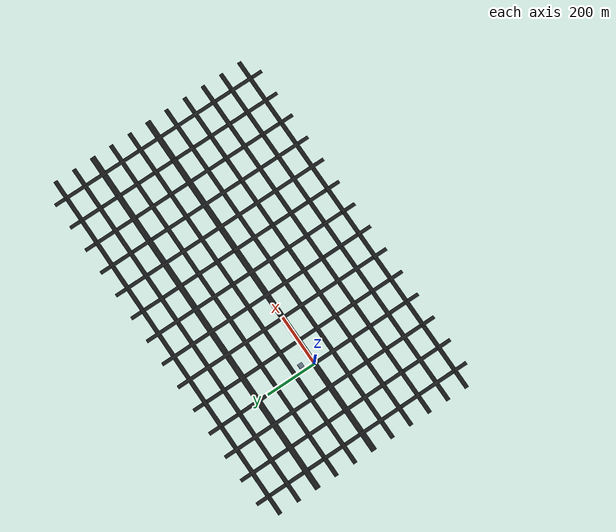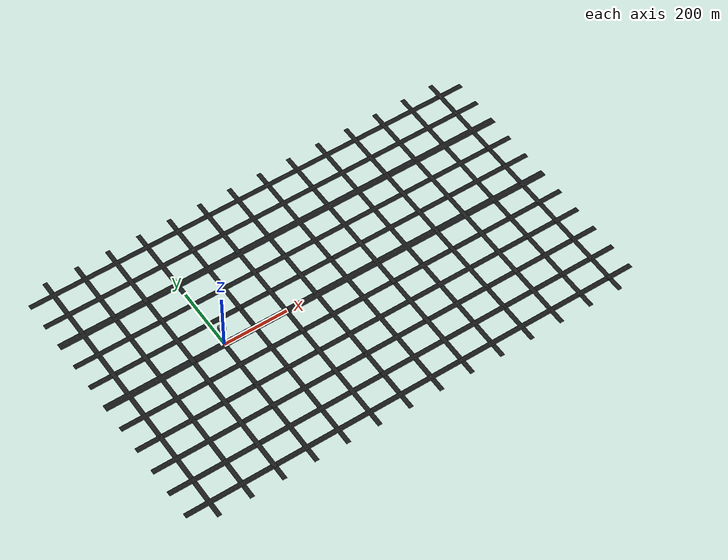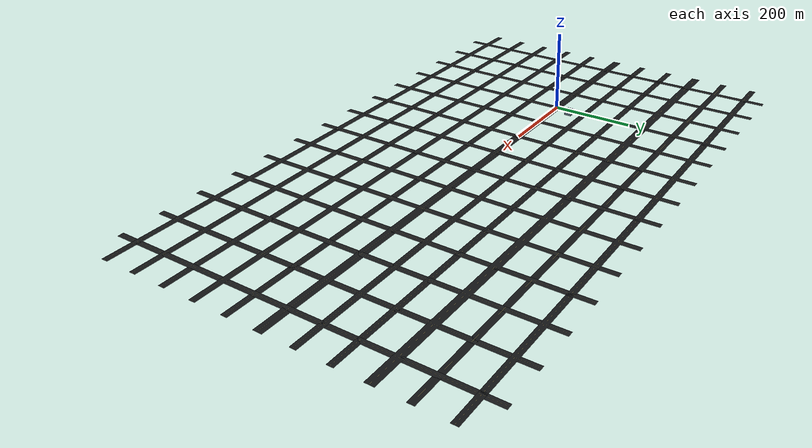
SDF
<sdf version="1.9">
 <world name="smart_city">
  <model name="building_1">
   <static>true</static>
   <pose>20 45 7 0 0 0</pose>
   <link name="building">
    <visual name="v">
     <geometry><box><size>18 18 14</size></box></geometry>
     <material><ambient>0.35 0.42 0.48 1</ambient></material>
    </visual>
   </link>
  </model>
  <model name="street_light_1">
   <static>true</static>
   <pose>20 8 4 0 0 0</pose>
   <link name="pole">
    <visual name="pole">
     <geometry><cylinder><radius>0.12</radius><length>8</length></cylinder></geometry>
     <material><ambient>0.15 0.15 0.15 1</ambient></material>
    </visual>
   </link>
  </model>
  <model name="street_tree_02">
   <static>true</static>
   <pose>15 44 0 0 0 0</pose>
   <link name="tree">
    <visual name="trunk">
     <pose>0 0 2 0 0 0</pose>
     <geometry><cylinder><radius>0.35</radius><length>4</length></cylinder></geometry>
     <material><ambient>0.30 0.18 0.08 1</ambient><diffuse>0.30 0.18 0.08 1</diffuse></material>
    </visual>
    <visual name="crown">
     <pose>0 0 5 0 0 0</pose>
     <geometry><sphere><radius>2.2</radius></sphere></geometry>
     <material><ambient>0.12 0.34 0.16 1</ambient><diffuse>0.12 0.34 0.16 1</diffuse></material>
    </visual>
   </link>
  </model>
  <model name="traffic_signal_1">
   <static>true</static>
   <pose>25 8 0 0 0 0</pose>
   <link name="signal">
    <visual name="mast">
     <pose>0 0 3 0 0 0</pose>
     <geometry><cylinder><radius>0.12</radius><length>6</length></cylinder></geometry>
     <material><ambient>0.12 0.12 0.12 1</ambient><diffuse>0.12 0.12 0.12 1</diffuse></material>
    </visual>
    <visual name="head">
     <pose>0 0 5.8 0 0 0</pose>
     <geometry><box><size>0.55 0.65 1.5</size></box></geometry>
     <material><ambient>0.16 0.17 0.16 1</ambient><diffuse>0.16 0.17 0.16 1</diffuse></material>
    </visual>
    <visual name="red_lamp">
     <pose>0 -0.34 6.2 0 0 0</pose>
     <geometry><sphere><radius>0.16</radius></sphere></geometry>
     <material>
      <ambient>0.9 0.04 0.02 1</ambient>
      <diffuse>0.9 0.04 0.02 1</diffuse>
      <emissive>0.6 0 0 1</emissive>
     </material>
    </visual>
    <visual name="green_lamp">
     <pose>0 -0.34 5.35 0 0 0</pose>
     <geometry><sphere><radius>0.16</radius></sphere></geometry>
     <material><ambient>0.02 0.7 0.12 1</ambient><diffuse>0.02 0.7 0.12 1</diffuse></material>
    </visual>
   </link>
  </model>
  <model name="metro_avenue_y_m400">
   <static>true</static>
   <link name="road">
    <visual name="asphalt">
     <pose>350 -400 0.025 0 0 0</pose>
     <geometry><box><size>1450 16 0.1</size></box></geometry>
     <material><ambient>0.075 0.08 0.085 1</ambient><diffuse>0.075 0.08 0.085 1</diffuse></material>
    </visual>
   </link>
  </model>
  <model name="metro_avenue_y_m320">
   <static>true</static>
   <link name="road">
    <visual name="asphalt">
     <pose>350 -320 0.025 0 0 0</pose>
     <geometry><box><size>1450 16 0.1</size></box></geometry>
     <material><ambient>0.075 0.08 0.085 1</ambient><diffuse>0.075 0.08 0.085 1</diffuse></material>
    </visual>
   </link>
  </model>
  <model name="metro_avenue_y_m240">
   <static>true</static>
   <link name="road">
    <visual name="asphalt">
     <pose>350 -240 0.025 0 0 0</pose>
     <geometry><box><size>1450 16 0.1</size></box></geometry>
     <material><ambient>0.075 0.08 0.085 1</ambient><diffuse>0.075 0.08 0.085 1</diffuse></material>
    </visual>
   </link>
  </model>
  <model name="metro_avenue_y_m160">
   <static>true</static>
   <link name="road">
    <visual name="asphalt">
     <pose>350 -160 0.025 0 0 0</pose>
     <geometry><box><size>1450 16 0.1</size></box></geometry>
     <material><ambient>0.075 0.08 0.085 1</ambient><diffuse>0.075 0.08 0.085 1</diffuse></material>
    </visual>
   </link>
  </model>
  <model name="metro_avenue_y_m80">
   <static>true</static>
   <link name="road">
    <visual name="asphalt">
     <pose>350 -80 0.025 0 0 0</pose>
     <geometry><box><size>1450 16 0.1</size></box></geometry>
     <material><ambient>0.075 0.08 0.085 1</ambient><diffuse>0.075 0.08 0.085 1</diffuse></material>
    </visual>
   </link>
  </model>
  <model name="metro_avenue_y_p0">
   <static>true</static>
   <link name="road">
    <visual name="asphalt">
     <pose>350 0 0.025 0 0 0</pose>
     <geometry><box><size>1450 22 0.1</size></box></geometry>
     <material><ambient>0.075 0.08 0.085 1</ambient><diffuse>0.075 0.08 0.085 1</diffuse></material>
    </visual>
   </link>
  </model>
  <model name="metro_avenue_y_p80">
   <static>true</static>
   <link name="road">
    <visual name="asphalt">
     <pose>350 80 0.025 0 0 0</pose>
     <geometry><box><size>1450 16 0.1</size></box></geometry>
     <material><ambient>0.075 0.08 0.085 1</ambient><diffuse>0.075 0.08 0.085 1</diffuse></material>
    </visual>
   </link>
  </model>
  <model name="metro_avenue_y_p160">
   <static>true</static>
   <link name="road">
    <visual name="asphalt">
     <pose>350 160 0.025 0 0 0</pose>
     <geometry><box><size>1450 16 0.1</size></box></geometry>
     <material><ambient>0.075 0.08 0.085 1</ambient><diffuse>0.075 0.08 0.085 1</diffuse></material>
    </visual>
   </link>
  </model>
  <model name="metro_avenue_y_p240">
   <static>true</static>
   <link name="road">
    <visual name="asphalt">
     <pose>350 240 0.025 0 0 0</pose>
     <geometry><box><size>1450 22 0.1</size></box></geometry>
     <material><ambient>0.075 0.08 0.085 1</ambient><diffuse>0.075 0.08 0.085 1</diffuse></material>
    </visual>
   </link>
  </model>
  <model name="metro_avenue_y_p320">
   <static>true</static>
   <link name="road">
    <visual name="asphalt">
     <pose>350 320 0.025 0 0 0</pose>
     <geometry><box><size>1450 16 0.1</size></box></geometry>
     <material><ambient>0.075 0.08 0.085 1</ambient><diffuse>0.075 0.08 0.085 1</diffuse></material>
    </visual>
   </link>
  </model>
  <model name="metro_avenue_y_p400">
   <static>true</static>
   <link name="road">
    <visual name="asphalt">
     <pose>350 400 0.025 0 0 0</pose>
     <geometry><box><size>1450 16 0.1</size></box></geometry>
     <material><ambient>0.075 0.08 0.085 1</ambient><diffuse>0.075 0.08 0.085 1</diffuse></material>
    </visual>
   </link>
  </model>
  <model name="metro_street_x_m300">
   <static>true</static>
   <link name="road">
    <visual name="asphalt">
     <pose>-300 0 0.025 0 0 1.5708</pose>
     <geometry><box><size>900 14 0.1</size></box></geometry>
     <material><ambient>0.09 0.095 0.1 1</ambient><diffuse>0.09 0.095 0.1 1</diffuse></material>
    </visual>
   </link>
  </model>
  <model name="metro_street_x_m200">
   <static>true</static>
   <link name="road">
    <visual name="asphalt">
     <pose>-200 0 0.025 0 0 1.5708</pose>
     <geometry><box><size>900 14 0.1</size></box></geometry>
     <material><ambient>0.09 0.095 0.1 1</ambient><diffuse>0.09 0.095 0.1 1</diffuse></material>
    </visual>
   </link>
  </model>
  <model name="metro_street_x_m100">
   <static>true</static>
   <link name="road">
    <visual name="asphalt">
     <pose>-100 0 0.025 0 0 1.5708</pose>
     <geometry><box><size>900 14 0.1</size></box></geometry>
     <material><ambient>0.09 0.095 0.1 1</ambient><diffuse>0.09 0.095 0.1 1</diffuse></material>
    </visual>
   </link>
  </model>
  <model name="metro_street_x_p0">
   <static>true</static>
   <link name="road">
    <visual name="asphalt">
     <pose>0 0 0.025 0 0 1.5708</pose>
     <geometry><box><size>900 14 0.1</size></box></geometry>
     <material><ambient>0.09 0.095 0.1 1</ambient><diffuse>0.09 0.095 0.1 1</diffuse></material>
    </visual>
   </link>
  </model>
  <model name="metro_street_x_p100">
   <static>true</static>
   <link name="road">
    <visual name="asphalt">
     <pose>100 0 0.025 0 0 1.5708</pose>
     <geometry><box><size>900 14 0.1</size></box></geometry>
     <material><ambient>0.09 0.095 0.1 1</ambient><diffuse>0.09 0.095 0.1 1</diffuse></material>
    </visual>
   </link>
  </model>
  <model name="metro_street_x_p200">
   <static>true</static>
   <link name="road">
    <visual name="asphalt">
     <pose>200 0 0.025 0 0 1.5708</pose>
     <geometry><box><size>900 14 0.1</size></box></geometry>
     <material><ambient>0.09 0.095 0.1 1</ambient><diffuse>0.09 0.095 0.1 1</diffuse></material>
    </visual>
   </link>
  </model>
  <model name="metro_street_x_p300">
   <static>true</static>
   <link name="road">
    <visual name="asphalt">
     <pose>300 0 0.025 0 0 1.5708</pose>
     <geometry><box><size>900 14 0.1</size></box></geometry>
     <material><ambient>0.09 0.095 0.1 1</ambient><diffuse>0.09 0.095 0.1 1</diffuse></material>
    </visual>
   </link>
  </model>
  <model name="metro_street_x_p400">
   <static>true</static>
   <link name="road">
    <visual name="asphalt">
     <pose>400 0 0.025 0 0 1.5708</pose>
     <geometry><box><size>900 14 0.1</size></box></geometry>
     <material><ambient>0.09 0.095 0.1 1</ambient><diffuse>0.09 0.095 0.1 1</diffuse></material>
    </visual>
   </link>
  </model>
  <model name="metro_street_x_p500">
   <static>true</static>
   <link name="road">
    <visual name="asphalt">
     <pose>500 0 0.025 0 0 1.5708</pose>
     <geometry><box><size>900 14 0.1</size></box></geometry>
     <material><ambient>0.09 0.095 0.1 1</ambient><diffuse>0.09 0.095 0.1 1</diffuse></material>
    </visual>
   </link>
  </model>
  <model name="metro_street_x_p600">
   <static>true</static>
   <link name="road">
    <visual name="asphalt">
     <pose>600 0 0.025 0 0 1.5708</pose>
     <geometry><box><size>900 14 0.1</size></box></geometry>
     <material><ambient>0.09 0.095 0.1 1</ambient><diffuse>0.09 0.095 0.1 1</diffuse></material>
    </visual>
   </link>
  </model>
  <model name="metro_street_x_p700">
   <static>true</static>
   <link name="road">
    <visual name="asphalt">
     <pose>700 0 0.025 0 0 1.5708</pose>
     <geometry><box><size>900 14 0.1</size></box></geometry>
     <material><ambient>0.09 0.095 0.1 1</ambient><diffuse>0.09 0.095 0.1 1</diffuse></material>
    </visual>
   </link>
  </model>
  <model name="metro_street_x_p800">
   <static>true</static>
   <link name="road">
    <visual name="asphalt">
     <pose>800 0 0.025 0 0 1.5708</pose>
     <geometry><box><size>900 14 0.1</size></box></geometry>
     <material><ambient>0.09 0.095 0.1 1</ambient><diffuse>0.09 0.095 0.1 1</diffuse></material>
    </visual>
   </link>
  </model>
  <model name="metro_lane_markings">
   <static>true</static>
   <link name="paint">
    <visual name="avenue_center_0">
     <pose>350 -400 0.078 0 0 0</pose>
     <geometry><box><size>1450 0.20 0.012</size></box></geometry>
     <material><ambient>0.86 0.78 0.50 1</ambient><diffuse>0.86 0.78 0.50 1</diffuse></material>
    </visual>
    <visual name="avenue_center_1">
     <pose>350 -320 0.078 0 0 0</pose>
     <geometry><box><size>1450 0.20 0.012</size></box></geometry>
     <material><ambient>0.86 0.78 0.50 1</ambient><diffuse>0.86 0.78 0.50 1</diffuse></material>
    </visual>
    <visual name="avenue_center_2">
     <pose>350 -240 0.078 0 0 0</pose>
     <geometry><box><size>1450 0.20 0.012</size></box></geometry>
     <material><ambient>0.86 0.78 0.50 1</ambient><diffuse>0.86 0.78 0.50 1</diffuse></material>
    </visual>
    <visual name="avenue_center_3">
     <pose>350 -160 0.078 0 0 0</pose>
     <geometry><box><size>1450 0.20 0.012</size></box></geometry>
     <material><ambient>0.86 0.78 0.50 1</ambient><diffuse>0.86 0.78 0.50 1</diffuse></material>
    </visual>
    <visual name="avenue_center_4">
     <pose>350 -80 0.078 0 0 0</pose>
     <geometry><box><size>1450 0.20 0.012</size></box></geometry>
     <material><ambient>0.86 0.78 0.50 1</ambient><diffuse>0.86 0.78 0.50 1</diffuse></material>
    </visual>
    <visual name="avenue_center_5">
     <pose>350 0 0.078 0 0 0</pose>
     <geometry><box><size>1450 0.20 0.012</size></box></geometry>
     <material><ambient>0.86 0.78 0.50 1</ambient><diffuse>0.86 0.78 0.50 1</diffuse></material>
    </visual>
    <visual name="avenue_center_6">
     <pose>350 80 0.078 0 0 0</pose>
     <geometry><box><size>1450 0.20 0.012</size></box></geometry>
     <material><ambient>0.86 0.78 0.50 1</ambient><diffuse>0.86 0.78 0.50 1</diffuse></material>
    </visual>
    <visual name="avenue_center_7">
     <pose>350 160 0.078 0 0 0</pose>
     <geometry><box><size>1450 0.20 0.012</size></box></geometry>
     <material><ambient>0.86 0.78 0.50 1</ambient><diffuse>0.86 0.78 0.50 1</diffuse></material>
    </visual>
    <visual name="avenue_center_8">
     <pose>350 240 0.078 0 0 0</pose>
     <geometry><box><size>1450 0.20 0.012</size></box></geometry>
     <material><ambient>0.86 0.78 0.50 1</ambient><diffuse>0.86 0.78 0.50 1</diffuse></material>
    </visual>
    <visual name="avenue_center_9">
     <pose>350 320 0.078 0 0 0</pose>
     <geometry><box><size>1450 0.20 0.012</size></box></geometry>
     <material><ambient>0.86 0.78 0.50 1</ambient><diffuse>0.86 0.78 0.50 1</diffuse></material>
    </visual>
    <visual name="avenue_center_10">
     <pose>350 400 0.078 0 0 0</pose>
     <geometry><box><size>1450 0.20 0.012</size></box></geometry>
     <material><ambient>0.86 0.78 0.50 1</ambient><diffuse>0.86 0.78 0.50 1</diffuse></material>
    </visual>
    <visual name="street_center_0">
     <pose>-300 0 0.079 0 0 1.5708</pose>
     <geometry><box><size>900 0.20 0.012</size></box></geometry>
     <material><ambient>0.86 0.78 0.50 1</ambient><diffuse>0.86 0.78 0.50 1</diffuse></material>
    </visual>
    <visual name="street_center_1">
     <pose>-200 0 0.079 0 0 1.5708</pose>
     <geometry><box><size>900 0.20 0.012</size></box></geometry>
     <material><ambient>0.86 0.78 0.50 1</ambient><diffuse>0.86 0.78 0.50 1</diffuse></material>
    </visual>
    <visual name="street_center_2">
     <pose>-100 0 0.079 0 0 1.5708</pose>
     <geometry><box><size>900 0.20 0.012</size></box></geometry>
     <material><ambient>0.86 0.78 0.50 1</ambient><diffuse>0.86 0.78 0.50 1</diffuse></material>
    </visual>
    <visual name="street_center_3">
     <pose>0 0 0.079 0 0 1.5708</pose>
     <geometry><box><size>900 0.20 0.012</size></box></geometry>
     <material><ambient>0.86 0.78 0.50 1</ambient><diffuse>0.86 0.78 0.50 1</diffuse></material>
    </visual>
    <visual name="street_center_4">
     <pose>100 0 0.079 0 0 1.5708</pose>
     <geometry><box><size>900 0.20 0.012</size></box></geometry>
     <material><ambient>0.86 0.78 0.50 1</ambient><diffuse>0.86 0.78 0.50 1</diffuse></material>
    </visual>
    <visual name="street_center_5">
     <pose>200 0 0.079 0 0 1.5708</pose>
     <geometry><box><size>900 0.20 0.012</size></box></geometry>
     <material><ambient>0.86 0.78 0.50 1</ambient><diffuse>0.86 0.78 0.50 1</diffuse></material>
    </visual>
    <visual name="street_center_6">
     <pose>300 0 0.079 0 0 1.5708</pose>
     <geometry><box><size>900 0.20 0.012</size></box></geometry>
     <material><ambient>0.86 0.78 0.50 1</ambient><diffuse>0.86 0.78 0.50 1</diffuse></material>
    </visual>
    <visual name="street_center_7">
     <pose>400 0 0.079 0 0 1.5708</pose>
     <geometry><box><size>900 0.20 0.012</size></box></geometry>
     <material><ambient>0.86 0.78 0.50 1</ambient><diffuse>0.86 0.78 0.50 1</diffuse></material>
    </visual>
    <visual name="street_center_8">
     <pose>500 0 0.079 0 0 1.5708</pose>
     <geometry><box><size>900 0.20 0.012</size></box></geometry>
     <material><ambient>0.86 0.78 0.50 1</ambient><diffuse>0.86 0.78 0.50 1</diffuse></material>
    </visual>
    <visual name="street_center_9">
     <pose>600 0 0.079 0 0 1.5708</pose>
     <geometry><box><size>900 0.20 0.012</size></box></geometry>
     <material><ambient>0.86 0.78 0.50 1</ambient><diffuse>0.86 0.78 0.50 1</diffuse></material>
    </visual>
    <visual name="street_center_10">
     <pose>700 0 0.079 0 0 1.5708</pose>
     <geometry><box><size>900 0.20 0.012</size></box></geometry>
     <material><ambient>0.86 0.78 0.50 1</ambient><diffuse>0.86 0.78 0.50 1</diffuse></material>
    </visual>
    <visual name="street_center_11">
     <pose>800 0 0.079 0 0 1.5708</pose>
     <geometry><box><size>900 0.20 0.012</size></box></geometry>
     <material><ambient>0.86 0.78 0.50 1</ambient><diffuse>0.86 0.78 0.50 1</diffuse></material>
    </visual>
    <visual name="street_center_13">
     <pose>900 0 0.079 0 0 1.5708</pose>
     <geometry><box><size>900 0.20 0.012</size></box></geometry>
     <material><ambient>0.86 0.78 0.50 1</ambient><diffuse>0.86 0.78 0.50 1</diffuse></material>
    </visual>
    <visual name="street_center_14">
     <pose>1000 0 0.079 0 0 1.5708</pose>
     <geometry><box><size>900 0.20 0.012</size></box></geometry>
     <material><ambient>0.86 0.78 0.50 1</ambient><diffuse>0.86 0.78 0.50 1</diffuse></material>
    </visual>
   </link>
  </model>
  <model name="metro_street_x_p900">
   <static>true</static>
   <link name="road">
    <visual name="asphalt">
     <pose>900 0 0.025 0 0 1.5708</pose>
     <geometry><box><size>900 14 0.1</size></box></geometry>
     <material><ambient>0.09 0.095 0.1 1</ambient><diffuse>0.09 0.095 0.1 1</diffuse></material>
    </visual>
   </link>
  </model>
  <model name="metro_street_x_p1000">
   <static>true</static>
   <link name="road">
    <visual name="asphalt">
     <pose>1000 0 0.025 0 0 1.5708</pose>
     <geometry><box><size>900 14 0.1</size></box></geometry>
     <material><ambient>0.09 0.095 0.1 1</ambient><diffuse>0.09 0.095 0.1 1</diffuse></material>
    </visual>
   </link>
  </model>
  <model name="ambulance">
   <link name="base_link">
    <pose>0 0 0.72 0 0 0</pose>
    <inertial>
     <mass>85</mass>
     <inertia><ixx>32</ixx><iyy>80</iyy><izz>88</izz><ixy>0</ixy><ixz>0</ixz><iyz>0</iyz></inertia>
    </inertial>
    <collision name="chassis_collision"><geometry><box><size>4.8 2.15 1.20</size></box></geometry></collision>
    <visual name="white_ambulance_body">
     <geometry><box><size>4.8 2.15 1.20</size></box></geometry>
     <material><ambient>0.94 0.94 0.90 1</ambient><diffuse>0.94 0.94 0.90 1</diffuse></material>
    </visual>
    <visual name="patient_cabin">
     <pose>-0.25 0 0.72 0 0 0</pose>
     <geometry><box><size>2.7 1.98 0.72</size></box></geometry>
     <material><ambient>0.18 0.34 0.43 1</ambient><diffuse>0.18 0.34 0.43 1</diffuse></material>
    </visual>
    <visual name="red_side_stripe">
     <pose>0 1.09 -0.05 0 0 0</pose>
     <geometry><box><size>3.8 0.04 0.24</size></box></geometry>
     <material><ambient>0.88 0.025 0.02 1</ambient><diffuse>0.88 0.025 0.02 1</diffuse></material>
    </visual>
    <visual name="red_roof_cross_long">
     <pose>0 0 0.99 0 0 0</pose>
     <geometry><box><size>1.35 0.30 0.08</size></box></geometry>
     <material><ambient>0.90 0.02 0.02 1</ambient><diffuse>0.90 0.02 0.02 1</diffuse></material>
    </visual>
    <visual name="red_roof_cross_wide">
     <pose>0 0 0.99 0 0 0</pose>
     <geometry><box><size>0.30 1.35 0.08</size></box></geometry>
     <material><ambient>0.90 0.02 0.02 1</ambient><diffuse>0.90 0.02 0.02 1</diffuse></material>
    </visual>
    <visual name="blue_lightbar">
     <pose>0 0 1.15 0 0 0</pose>
     <geometry><box><size>0.85 0.38 0.16</size></box></geometry>
     <material>
      <ambient>0.02 0.16 0.95 1</ambient>
      <diffuse>0.02 0.16 0.95 1</diffuse>
      <emissive>0.02 0.08 0.65 1</emissive>
     </material>
    </visual>
    <sensor name="front_lidar" type="gpu_lidar">
     <pose>0.7 0 0.75 0 0 0</pose>
     <always_on>true</always_on>
     <update_rate>10</update_rate>
     <visualize>false</visualize>
     <topic>/ambulance/scan</topic>
     <lidar>
      <scan>
       <horizontal>
        <samples>360</samples>
        <resolution>1</resolution>
        <min_angle>-3.14159</min_angle>
        <max_angle>3.14159</max_angle>
       </horizontal>
      </scan>
      <range><min>0.12</min><max>18.0</max><resolution>0.02</resolution></range>
     </lidar>
    </sensor>
   </link>
   <link name="left_wheel">
    <pose>0 0.94 0.36 0 0 0</pose>
    <inertial>
     <mass>4</mass>
     <inertia><ixx>0.12</ixx><iyy>0.12</iyy><izz>0.12</izz><ixy>0</ixy><ixz>0</ixz><iyz>0</iyz></inertia>
    </inertial>
    <collision name="wheel_collision">
     <pose>0 0 0 1.5708 0 0</pose>
     <geometry><cylinder><radius>0.36</radius><length>0.18</length></cylinder></geometry>
     <surface><friction><ode><mu>1.4</mu><mu2>1.4</mu2></ode></friction></surface>
    </collision>
    <visual name="wheel">
     <pose>0 0 0 1.5708 0 0</pose>
     <geometry><cylinder><radius>0.36</radius><length>0.18</length></cylinder></geometry>
     <material><ambient>0.04 0.04 0.045 1</ambient><diffuse>0.04 0.04 0.045 1</diffuse></material>
    </visual>
   </link>
   <link name="right_wheel">
    <pose>0 -0.94 0.36 0 0 0</pose>
    <inertial>
     <mass>4</mass>
     <inertia><ixx>0.12</ixx><iyy>0.12</iyy><izz>0.12</izz><ixy>0</ixy><ixz>0</ixz><iyz>0</iyz></inertia>
    </inertial>
    <collision name="wheel_collision">
     <pose>0 0 0 1.5708 0 0</pose>
     <geometry><cylinder><radius>0.36</radius><length>0.18</length></cylinder></geometry>
     <surface><friction><ode><mu>1.4</mu><mu2>1.4</mu2></ode></friction></surface>
    </collision>
    <visual name="wheel">
     <pose>0 0 0 1.5708 0 0</pose>
     <geometry><cylinder><radius>0.36</radius><length>0.18</length></cylinder></geometry>
     <material><ambient>0.04 0.04 0.045 1</ambient><diffuse>0.04 0.04 0.045 1</diffuse></material>
    </visual>
   </link>
   <joint name="left_wheel_joint" type="revolute">
    <parent>base_link</parent>
    <child>left_wheel</child>
    <axis><xyz>0 1 0</xyz><limit><lower>-1e16</lower><upper>1e16</upper></limit></axis>
   </joint>
   <joint name="right_wheel_joint" type="revolute">
    <parent>base_link</parent>
    <child>right_wheel</child>
    <axis><xyz>0 1 0</xyz><limit><lower>-1e16</lower><upper>1e16</upper></limit></axis>
   </joint>
   <plugin filename="gz-sim-diff-drive-system" name="gz::sim::systems::DiffDrive">
    <left_joint>left_wheel_joint</left_joint>
    <right_joint>right_wheel_joint</right_joint>
    <wheel_separation>1.88</wheel_separation>
    <wheel_radius>0.36</wheel_radius>
    <topic>/ambulance/cmd_vel</topic>
    <odom_topic>/ambulance/odom</odom_topic>
    <frame_id>odom</frame_id>
    <child_frame_id>base_footprint</child_frame_id>
    <odom_publish_frequency>30</odom_publish_frequency>
   </plugin>
   <plugin filename="gz-sim-trajectory-follower-system" name="gz::sim::systems::TrajectoryFollower">
    <link_name>base_link</link_name>
    <loop>true</loop>
    <range_tolerance>3.0</range_tolerance>
    <bearing_tolerance>8.0</bearing_tolerance>
    <force>180</force>
    <torque>220</torque>
    <waypoints>
     <waypoint>120 0</waypoint>
     <waypoint>120 30</waypoint>
     <waypoint>20 30</waypoint>
     <waypoint>20 0</waypoint>
    </waypoints>
   </plugin>
  </model>
 </world>
</sdf>
